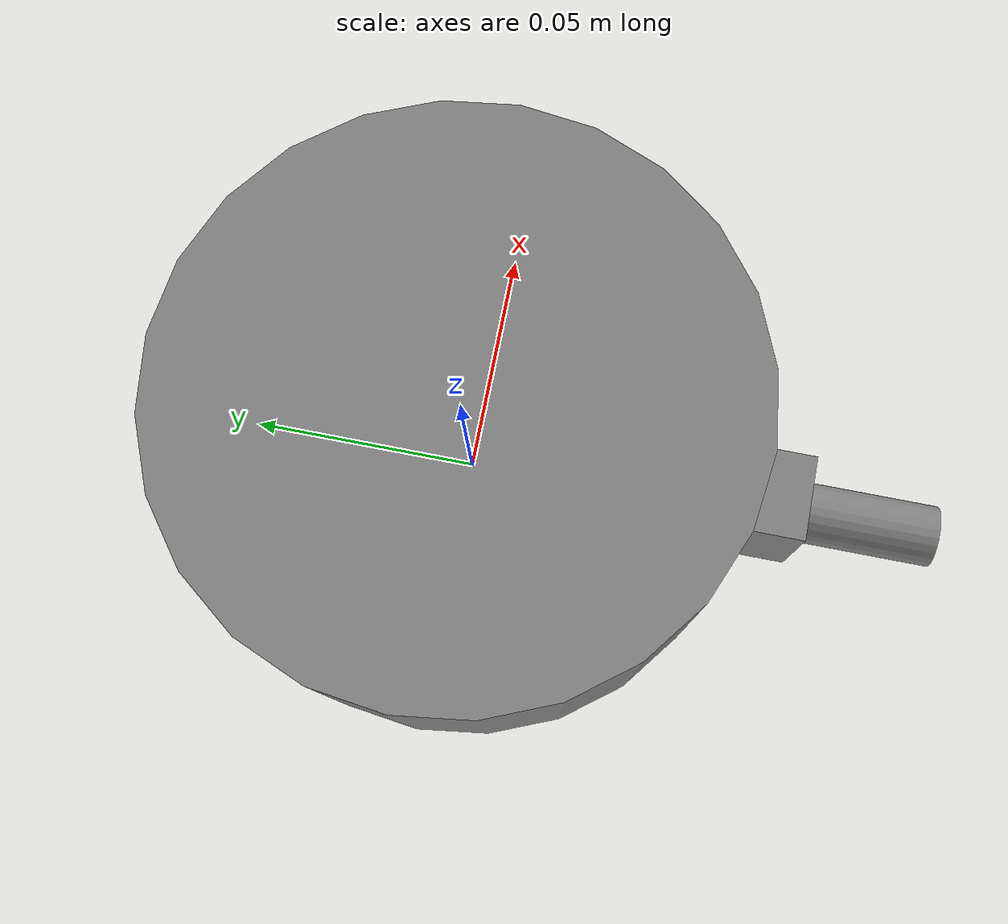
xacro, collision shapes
<?xml version="1.0"?>
<robot xmlns:xacro="http://wiki.ros.org/xacro"
       name="sensor" >

  <xacro:arg name="prefix" default="ft_sensor0"/>

  <xacro:include filename="$(find rokubimini_description)/urdf/BFT_MEGS_SER_M8.urdf.xacro" />

  <xacro:BFT_MEGS_SER_M8 prefix="$(arg prefix)" />

  <link name="world" />

  <joint name="world_joint" type="fixed">
    <parent link="world" />
    <child link = "$(arg prefix)_mounting" />
    <origin xyz="0.0 0.0 0.0" rpy="0.0 0.0 0.0" />
  </joint>

</robot>

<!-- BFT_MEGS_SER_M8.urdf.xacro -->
<robot xmlns:xacro="http://wiki.ros.org/xacro">
  <xacro:macro name="BFT_MEGS_SER_M8" params="prefix">

    <link
      name="${prefix}_mounting">
      <inertial>
        <origin
          xyz="-9.9626E-09 -0.00076435 0.024718"
          rpy="0 0 0" />
        <mass
          value="0.98457" />
        <inertia
          ixx="0.0013943"
          ixy="3.1552E-10"
          ixz="-2.0448E-11"
          iyy="0.0013945"
          iyz="8.0585E-07"
          izz="0.0023427" />
      </inertial>
      <visual>
        <origin
          xyz="0 0 0"
          rpy="0 0 0" />
        <geometry>
          <mesh
            filename="package://rokubimini_description/meshes/BFT_MEGS_M8/mounting.STL" />
        </geometry>
        <material name="">
          <color rgba="0.50196 0.50196 0.50196 1" />
        </material>
      </visual>
      <collision>
        <origin
          xyz="0 0 0.0295"
          rpy="0 0 0" />
        <geometry>
          <cylinder radius="0.060" length="0.059"/>
        </geometry>
      </collision>
      <collision>
        <origin
          xyz="0 -0.065 0.015"
          rpy="0 0 0" />
        <geometry>
          <box size="0.018 0.015 0.027" />
        </geometry>
      </collision>
      <collision>
        <origin
          xyz="0 -0.085 0.015"
          rpy="1.57 0 0" />
        <geometry>
          <cylinder radius="0.0065" length="0.032"/>
        </geometry>
      </collision>
    </link>

    <link
      name="${prefix}_wrench">
      <inertial>
        <origin
          xyz="-4.35933E-05 -7.88886E-06 -0.01550"
          rpy="0 0 0" />
        <mass
          value="0.378969163715419" />
        <inertia
          ixx="0.000211209280723679"
          ixy="1.30351293568812E-10"
          ixz="2.01303352334353E-07"
          iyy="0.000210583550455704"
          iyz="-5.63411860645026E-08"
          izz="0.00034505338301979" />
      </inertial>
    </link>

    <joint
      name="mounting_to_wrench"
      type="fixed">
      <origin
        xyz="0 0 0.059"
        rpy="0 0 0" />
      <parent
        link="${prefix}_mounting" />
      <child
        link="${prefix}_wrench" />
      <axis
        xyz="0 0 0" />
    </joint>

  </xacro:macro>
</robot>
